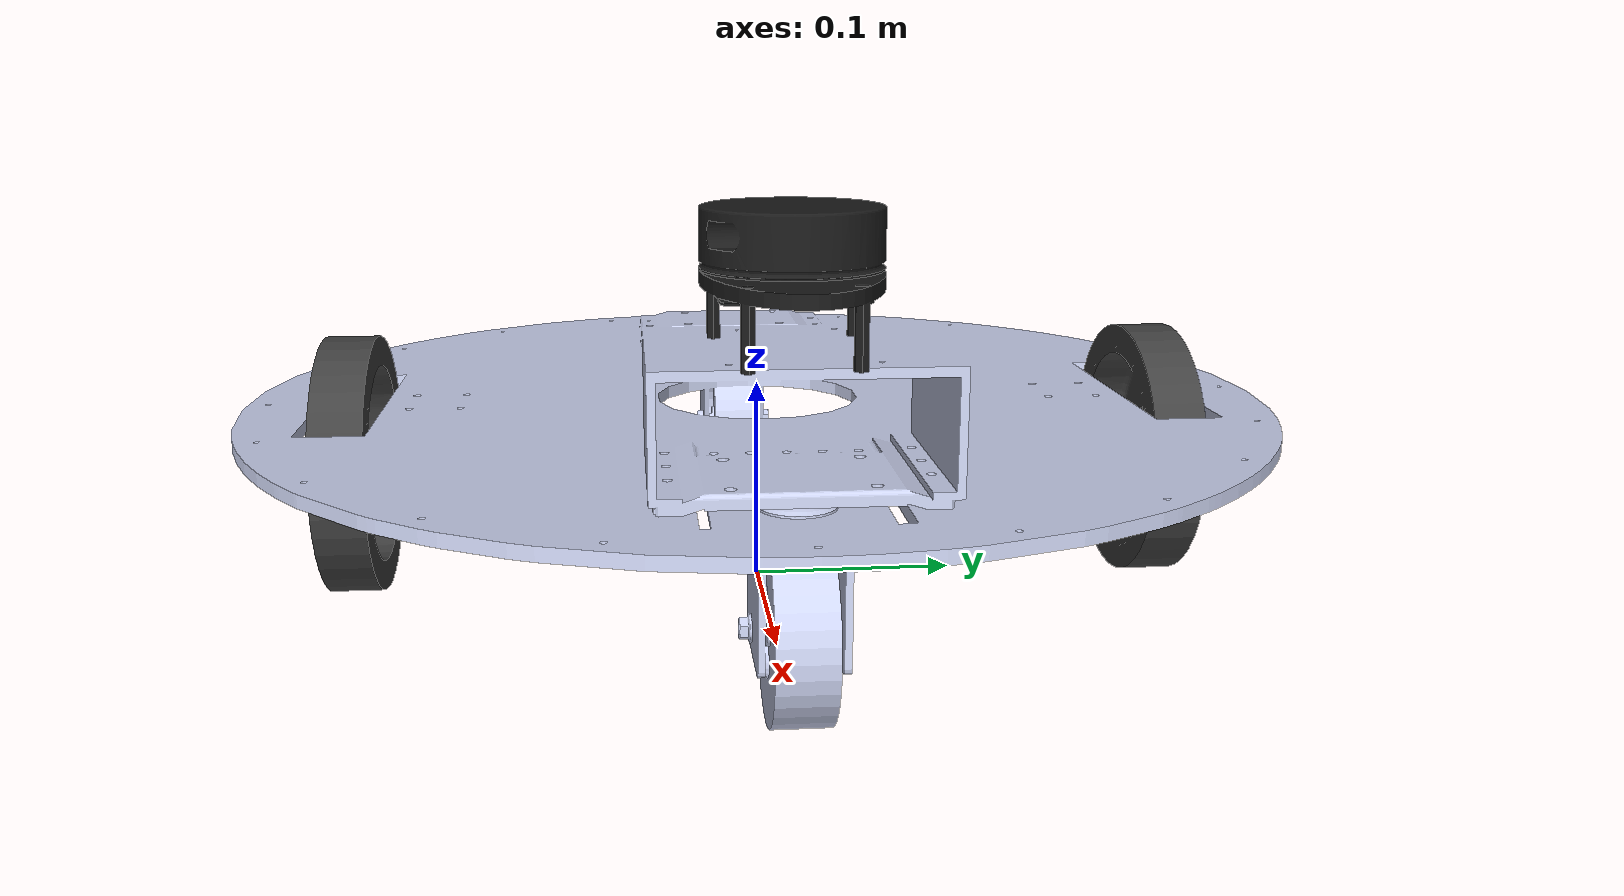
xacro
<?xml version="1.0"?>
<robot  xmlns:xacro="https://www.ros.org/wiki/xacro" name="circle_bot">

    <xacro:include filename="Security_Robot_Mark_20.xacro"/>

</robot>

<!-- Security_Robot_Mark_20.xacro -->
<robot name="Security_Robot_Mark_20" xmlns:xacro="http://www.ros.org/wiki/xacro" >
  <xacro:property name="meshes_path" value="file:///home/arm/ros2_ws/src/mobile_robotics_update/meshes" />
  <link
    name="base_link">
    <inertial>
      <origin
        xyz="0.00733755049412185 -5.39717628510772E-16 -0.010920872627138"
        rpy="0 0 0" />
      <mass
        value="1.66265182518031" />
      <inertia
        ixx="0.0166804508531607"
        ixy="2.3768478476067E-08"
        ixz="-1.68551668529348E-16"
        iyy="0.0163937587087183"
        iyz="-4.59260777569602E-19"
        izz="0.0327738693222473" />
    </inertial>
    <visual>
      <origin
        xyz="0 0 0"
        rpy="0 0 0" />
      <geometry>
        <mesh
          filename="file://$(find mobile_robotics_update)/meshes//base_link.STL" />
      </geometry>
      <material
        name="">
        <color
          rgba="0.792156862745098 0.819607843137255 0.933333333333333 1" />
      </material>
    </visual>
    <collision>
      <origin
        xyz="0 0 0"
        rpy="0 0 0" />
      <geometry>
        <mesh
          filename="file://$(find mobile_robotics_update)/meshes/base_link.STL" />
      </geometry>
    </collision>
  </link>
  <link
    name="Left_Wheel">
    <inertial>
      <origin
        xyz="3.7876469103962E-06 -2.34057693504833E-06 -0.00855350930851936"
        rpy="0 0 0" />
      <mass
        value="0.173345367563793" />
      <inertia
        ixx="0.000227224601650837"
        ixy="-6.33051985683366E-12"
        ixz="6.17337080519082E-09"
        iyy="0.000227224587874389"
        iyz="-3.80890662274385E-09"
        izz="0.00043669530740078" />
    </inertial>
    <visual>
      <origin
        xyz="0 0 0"
        rpy="0 0 0" />
      <geometry>
        <mesh
          filename="file://$(find mobile_robotics_update)/meshes/Left_Wheel.STL" />
      </geometry>
      <material
        name="">
        <color
          rgba="0.250980392156863 0.250980392156863 0.250980392156863 1" />
      </material>
    </visual>
    <collision>
      <origin
        xyz="0 0 0"
        rpy="0 0 0" />
      <geometry>
        <mesh
          filename="file://$(find mobile_robotics_update)/meshes/Left_Wheel.STL" />
      </geometry>
    </collision>
  </link>
  <joint
    name="Left_Wheel_Joint"
    type="continuous">
    <origin
      xyz="0 0.2083 -0.0305"
      rpy="-1.5708 0 0" />
    <parent
      link="base_link" />
    <child
      link="Left_Wheel" />
    <axis
      xyz="0 0 1" />
    <dynamics
      friction="0.2" />
  </joint>
  <link
    name="Right_Wheel">
    <inertial>
      <origin
        xyz="-9.0687651226466E-08 4.45155537705244E-06 0.00855350930851917"
        rpy="0 0 0" />
      <mass
        value="0.173345367563793" />
      <inertia
        ixx="0.000227224585891191"
        ixy="2.9700141244675E-12"
        ixz="1.42703154393877E-10"
        iyy="0.000227224603634035"
        iyz="-7.25244183619711E-09"
        izz="0.00043669530740078" />
    </inertial>
    <visual>
      <origin
        xyz="0 0 0"
        rpy="0 0 0" />
      <geometry>
        <mesh
          filename="file://$(find mobile_robotics_update)/meshes/Right_Wheel.STL" />
      </geometry>
      <material
        name="">
        <color
          rgba="0.250980392156863 0.250980392156863 0.250980392156863 1" />
      </material>
    </visual>
    <collision>
      <origin
        xyz="0 0 0"
        rpy="0 0 0" />
      <geometry>
        <mesh
          filename="file://$(find mobile_robotics_update)/meshes/Right_Wheel.STL" />
      </geometry>
    </collision>
  </link>
  <joint
    name="Right_Wheel_Joint"
    type="continuous">
    <origin
      xyz="0 -0.2083 -0.0305"
      rpy="-1.5708 0 0" />
    <parent
      link="base_link" />
    <child
      link="Right_Wheel" />
    <axis
      xyz="0 0 1" />
    <dynamics
      friction="0.2" />
  </joint>
  <link name="base_footprint">
    <visual>
      <geometry>
        <mesh filename="file://$(find mobile_robotics_update)/meshes/base_footprint.STL"/>
      </geometry>
      <material name="light_blue">
        <color rgba="0.792 0.820 0.933 1"/>
      </material>
    </visual>
  </link>
   <joint name="base_footprint_joint" type="fixed">
    <origin xyz="0 0 0.0935" rpy="0 0 0"/>
    <parent link="base_footprint"/>
    <child link="base_link"/>
  </joint>
  <link
    name="laser">
    <inertial>
      <origin
        xyz="-0.0024095134520167 0.000766066711738304 -0.0070075846634633"
        rpy="0 0 0" />
      <mass
        value="0.13082435794975" />
      <inertia
        ixx="4.50326969983476E-05"
        ixy="-1.12117402106384E-06"
        ixz="1.28379184302747E-07"
        iyy="5.52230197073E-05"
        iyz="1.57444487872041E-07"
        izz="9.05201766221748E-05" />
    </inertial>
    <visual>
      <origin
        xyz="0 0 0"
        rpy="0 0 0" />
      <geometry>
        <mesh
          filename="file://$(find mobile_robotics_update)/meshes/Lidar_Link.STL" />
      </geometry>
      <material
        name="">
        <color
          rgba="0.101960784313725 0.101960784313725 0.101960784313725 1" />
      </material>
    </visual>
    <collision>
      <origin
        xyz="0 0 0"
        rpy="0 0 0" />
      <geometry>
        <mesh
          filename="file://$(find mobile_robotics_update)/meshes/Lidar_Link.STL" />
      </geometry>
    </collision>
  </link>
  <joint
    name="laser_joint"
    type="fixed">
    <origin
      xyz="0.17407 -0.0011926 0.10093"
      rpy="0 0 3.1416" />
    <parent
      link="base_link" />
    <child
      link="laser" />
    <axis
      xyz="0 0 1" />
  </joint>
  <link name="imu_link"/>

  <joint name="imu_joint" type="fixed">
    <parent link="base_link"/>
    <child link="imu_link"/>
    <origin xyz="0 0 0" rpy="0 0 0"/> <!-- ปรับตำแหน่งให้ตรงกับที่ติดตั้งจริง -->
  </joint>

</robot>
